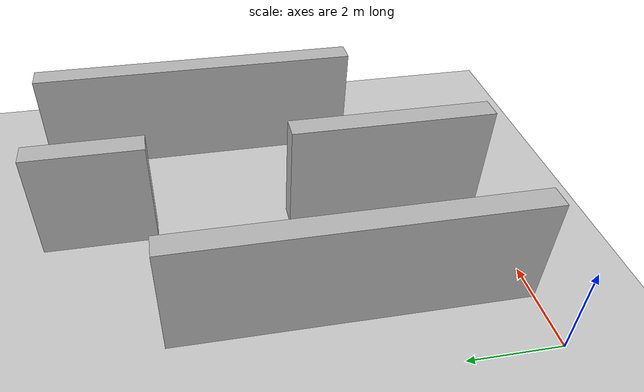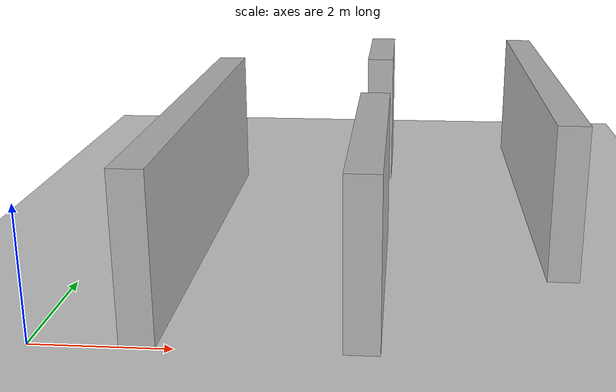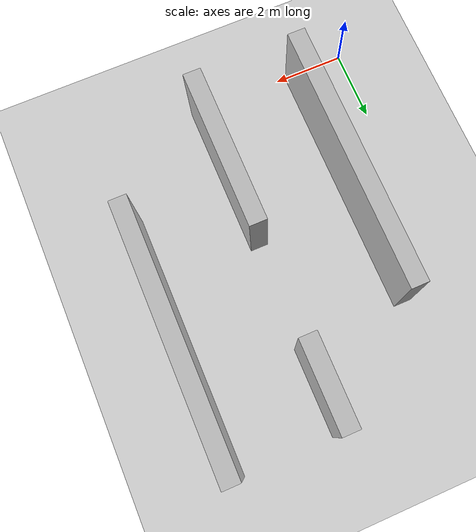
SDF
<?xml version="1.0" ?>
<sdf version="1.5">
  <world name="default">
    <scene>
      <shadows>false</shadows>
    </scene>
    <!-- A global light source -->
    <include>
      <uri>model://sun</uri>
    </include>
    <!-- A ground plane -->
    <include>
      <uri>model://ground_plane</uri>
    </include>
    <include>
      <name>wall1_thi</name>
      <uri>model://wall1_thi</uri>
      <pose>1.5 3.75 1.25 0 0 0</pose>
    </include>
    <include>
      <name>wall2_thi</name>
      <uri>model://wall2_thi</uri>
      <pose>4.5 2.25 1.25 0 0 0</pose>
    </include>
    <include>
      <name>wall3_thi</name>
      <uri>model://wall3_thi</uri>
      <pose>4.5 8.75 1.25 0 0 0</pose>
    </include>
    <include>
      <name>wall1_thi1</name>
      <uri>model://wall1_thi</uri>
      <pose>7.5 6.25 1.25 0 0 0</pose>
    </include>
    <physics name='default_physics' default='0' type='ode'>
      <gravity>0 0 -9.8066</gravity>
      <ode>
        <solver>
          <type>quick</type>
          <iters>10</iters>
          <sor>1.3</sor>
          <use_dynamic_moi_rescaling>0</use_dynamic_moi_rescaling>
        </solver>
        <constraints>
          <cfm>0</cfm>
          <erp>0.2</erp>
          <contact_max_correcting_vel>100</contact_max_correcting_vel>
          <contact_surface_layer>0.001</contact_surface_layer>
        </constraints>
      </ode>
      <max_step_size>0.004</max_step_size>
      <real_time_factor>1</real_time_factor>
      <real_time_update_rate>250</real_time_update_rate>
      <magnetic_field>6.0e-6 2.3e-5 -4.2e-5</magnetic_field>
    </physics>
    <plugin name="occupancy_grid" filename="libgazebo_occupancy_grid_plugin.so"/>
  </world>
</sdf>

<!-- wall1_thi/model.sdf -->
<sdf version="1.5">
  <model name="wall1_thi">
    <static>true</static>
    <link name="link">
      <collision name="collision">
        <geometry>
          <box>
            <size>0.5 7.5 2.5</size>
          </box>
        </geometry>
      </collision>
      <visual name="visual">
        <geometry>
          <box>
            <size>0.5 7.5 2.5</size>
          </box>
        </geometry>
      </visual>
    </link>
  </model>
</sdf>

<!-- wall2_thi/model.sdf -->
<sdf version="1.5">
  <model name="wall2_thi">
    <static>true</static>
    <link name="link">
      <collision name="collision">
        <geometry>
          <box>
            <size>0.5 4.5 2.5</size>
          </box>
        </geometry>
      </collision>
      <visual name="visual">
        <geometry>
          <box>
            <size>0.5 4.5 2.5</size>
          </box>
        </geometry>
      </visual>
    </link>
  </model>
</sdf>

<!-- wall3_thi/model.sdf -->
<sdf version="1.5">
  <model name="wall3_thi">
    <static>true</static>
    <link name="link">
      <collision name="collision">
        <geometry>
          <box>
            <size>0.5 2.5 2.5</size>
          </box>
        </geometry>
      </collision>
      <visual name="visual">
        <geometry>
          <box>
            <size>0.5 2.5 2.5</size>
          </box>
        </geometry>
      </visual>
    </link>
  </model>
</sdf>
